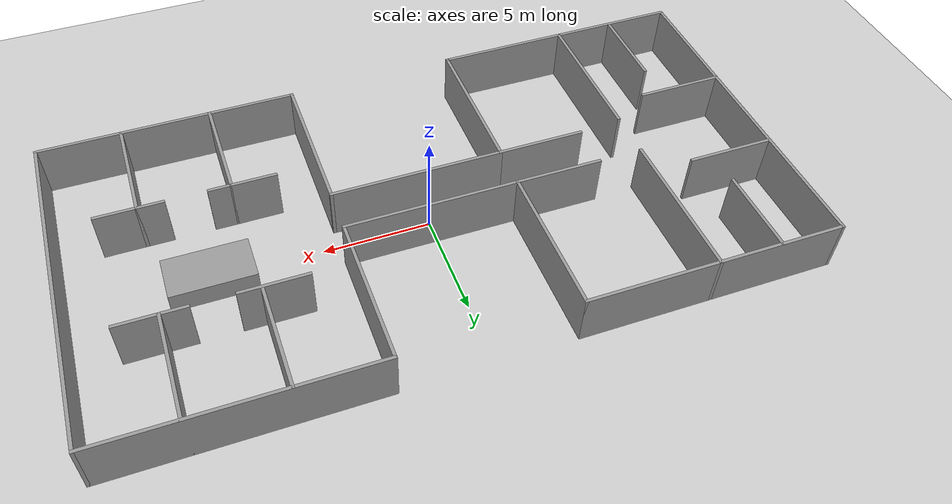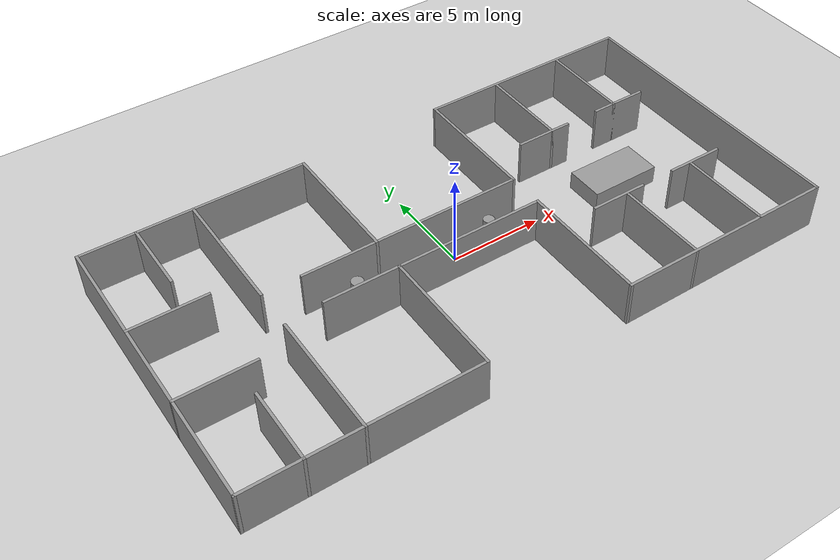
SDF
<sdf version="1.6">
 <world name="default">
  <light name="sun" type="directional">
   <pose>0 0 10 0 -0 0</pose>
   <diffuse>0.8 0.8 0.8 1</diffuse>
   <specular>0.1 0.1 0.1 1</specular>
   <attenuation>
    <range>1000</range>
    <constant>0.9</constant>
    <linear>0.01</linear>
    <quadratic>0.001</quadratic>
   </attenuation>
   <direction>-0.5 0.5 -1</direction>
  </light>
  <model name="ground_plane">
   <static>1</static>
   <link name="link">
    <collision name="collision">
     <geometry><plane><normal>0 0 1</normal><size>100 100</size></plane></geometry>
     <surface><friction><ode><mu>100</mu><mu2>50</mu2></ode></friction></surface>
    </collision>
    <visual name="visual">
     <cast_shadows>0</cast_shadows>
     <geometry><plane><normal>0 0 1</normal><size>100 100</size></plane></geometry>
     <material>
      <script><uri>file://media/materials/scripts/gazebo.material</uri><name>Gazebo/Grey</name></script>
     </material>
    </visual>
   </link>
  </model>
  <gravity>0 0 -9.8</gravity>
  <magnetic_field>6e-06 2.3e-05 -4.2e-05</magnetic_field>
  <atmosphere type="adiabatic"/>
  <physics name="default_physics" default="0" type="ode">
   <max_step_size>0.001</max_step_size>
   <real_time_factor>1</real_time_factor>
   <real_time_update_rate>1000</real_time_update_rate>
  </physics>
  <scene><ambient>0.4 0.4 0.4 1</ambient><background>0.7 0.7 0.7 1</background><shadows>1</shadows></scene>
  <spherical_coordinates>
   <surface_model>EARTH_WGS84</surface_model>
   <latitude_deg>0</latitude_deg>
   <longitude_deg>0</longitude_deg>
   <elevation>0</elevation>
   <heading_deg>0</heading_deg>
  </spherical_coordinates>
  <model name="corri">
   <pose>0.204649 -0.010537 0 0 -0 0</pose>
   <link name="Wall_0">
    <collision name="Wall_0_Collision">
     <geometry><box><size>12.15 0.15 2.5</size></box></geometry>
     <pose>0 0 1.25 0 -0 0</pose>
    </collision>
    <visual name="Wall_0_Visual">
     <pose>0 0 1.25 0 -0 0</pose>
     <geometry><box><size>12.15 0.15 2.5</size></box></geometry>
     <material>
      <script><uri>file://media/materials/scripts/gazebo.material</uri><name>Gazebo/Grey</name></script>
      <ambient>1 1 1 1</ambient>
     </material>
    </visual>
    <pose>-10.0001 7.99989 0 0 -0 0</pose>
   </link>
   <link name="Wall_10">
    <collision name="Wall_10_Collision">
     <geometry><box><size>7.15 0.15 2.5</size></box></geometry>
     <pose>0 0 1.25 0 -0 0</pose>
    </collision>
    <visual name="Wall_10_Visual">
     <pose>0 0 1.25 0 -0 0</pose>
     <geometry><box><size>7.15 0.15 2.5</size></box></geometry>
     <material>
      <script><uri>file://media/materials/scripts/gazebo.material</uri><name>Gazebo/Grey</name></script>
      <ambient>1 1 1 1</ambient>
     </material>
    </visual>
    <pose>-4.00008 -4.50011 0 0 0 -1.5708</pose>
   </link>
   <link name="Wall_11">
    <collision name="Wall_11_Collision">
     <geometry><box><size>12.15 0.15 2.5</size></box></geometry>
     <pose>0 0 1.25 0 -0 0</pose>
    </collision>
    <visual name="Wall_11_Visual">
     <pose>0 0 1.25 0 -0 0</pose>
     <geometry><box><size>12.15 0.15 2.5</size></box></geometry>
     <material>
      <script><uri>file://media/materials/scripts/gazebo.material</uri><name>Gazebo/Grey</name></script>
      <ambient>1 1 1 1</ambient>
     </material>
    </visual>
    <pose>-10.0001 -8.00011 0 0 -0 3.14159</pose>
   </link>
   <link name="Wall_12">
    <collision name="Wall_12_Collision">
     <geometry><box><size>16.15 0.15 2.5</size></box></geometry>
     <pose>0 0 1.25 0 -0 0</pose>
    </collision>
    <visual name="Wall_12_Visual">
     <pose>0 0 1.25 0 -0 0</pose>
     <geometry><box><size>16.15 0.15 2.5</size></box></geometry>
     <material>
      <script><uri>file://media/materials/scripts/gazebo.material</uri><name>Gazebo/Grey</name></script>
      <ambient>1 1 1 1</ambient>
     </material>
    </visual>
    <pose>-16.0001 -0.000108 0 0 -0 1.5708</pose>
   </link>
   <link name="Wall_14">
    <collision name="Wall_14_Collision">
     <geometry><box><size>7.14543 0.15 2.5</size></box></geometry>
     <pose>0 0 1.25 0 -0 0</pose>
    </collision>
    <visual name="Wall_14_Visual">
     <pose>0 0 1.25 0 -0 0</pose>
     <geometry><box><size>7.14543 0.15 2.5</size></box></geometry>
     <material>
      <script><uri>file://media/materials/scripts/gazebo.material</uri><name>Gazebo/Grey</name></script>
      <ambient>1 1 1 1</ambient>
     </material>
    </visual>
    <pose>-10.1011 4.50239 0 0 0 -1.5708</pose>
   </link>
   <link name="Wall_16">
    <collision name="Wall_16_Collision">
     <geometry><box><size>6.891 0.15 2.5</size></box></geometry>
     <pose>0 0 1.25 0 -0 0</pose>
    </collision>
    <visual name="Wall_16_Visual">
     <pose>0 0 1.25 0 -0 0</pose>
     <geometry><box><size>6.891 0.15 2.5</size></box></geometry>
     <material>
      <script><uri>file://media/materials/scripts/gazebo.material</uri><name>Gazebo/Grey</name></script>
      <ambient>1 1 1 1</ambient>
     </material>
    </visual>
    <pose>-10.1001 -4.62961 0 0 0 -1.5708</pose>
   </link>
   <link name="Wall_18">
    <collision name="Wall_18_Collision">
     <geometry><box><size>4.15 0.15 2.5</size></box></geometry>
     <pose>0 0 1.25 0 -0 0</pose>
    </collision>
    <visual name="Wall_18_Visual">
     <pose>0 0 1.25 0 -0 0</pose>
     <geometry><box><size>4.15 0.15 2.5</size></box></geometry>
     <material>
      <script><uri>file://media/materials/scripts/gazebo.material</uri><name>Gazebo/Grey</name></script>
      <ambient>1 1 1 1</ambient>
     </material>
    </visual>
    <pose>-14.0001 -2.38111 0 0 -0 0</pose>
   </link>
   <link name="Wall_2">
    <collision name="Wall_2_Collision">
     <geometry><box><size>7.15 0.15 2.5</size></box></geometry>
     <pose>0 0 1.25 0 -0 0</pose>
    </collision>
    <visual name="Wall_2_Visual">
     <pose>0 0 1.25 0 -0 0</pose>
     <geometry><box><size>7.15 0.15 2.5</size></box></geometry>
     <material>
      <script><uri>file://media/materials/scripts/gazebo.material</uri><name>Gazebo/Grey</name></script>
      <ambient>1 1 1 1</ambient>
     </material>
    </visual>
    <pose>-4.00008 4.49989 0 0 0 -1.5708</pose>
   </link>
   <link name="Wall_20">
    <collision name="Wall_20_Collision">
     <geometry><box><size>4.15 0.15 2.5</size></box></geometry>
     <pose>0 0 1.25 0 -0 0</pose>
    </collision>
    <visual name="Wall_20_Visual">
     <pose>0 0 1.25 0 -0 0</pose>
     <geometry><box><size>4.15 0.15 2.5</size></box></geometry>
     <material>
      <script><uri>file://media/materials/scripts/gazebo.material</uri><name>Gazebo/Grey</name></script>
      <ambient>1 1 1 1</ambient>
     </material>
    </visual>
    <pose>-14.0001 2.35289 0 0 -0 0</pose>
   </link>
   <link name="Wall_22">
    <collision name="Wall_22_Collision">
     <geometry><box><size>4.15 0.15 2.5</size></box></geometry>
     <pose>0 0 1.25 0 -0 0</pose>
    </collision>
    <visual name="Wall_22_Visual">
     <pose>0 0 1.25 0 -0 0</pose>
     <geometry><box><size>4.15 0.15 2.5</size></box></geometry>
     <material>
      <script><uri>file://media/materials/scripts/gazebo.material</uri><name>Gazebo/Grey</name></script>
      <ambient>1 1 1 1</ambient>
     </material>
    </visual>
    <pose>-6.00008 0.999892 0 0 -0 0</pose>
   </link>
   <link name="Wall_24">
    <collision name="Wall_24_Collision">
     <geometry><box><size>4.15 0.15 2.5</size></box></geometry>
     <pose>0 0 1.25 0 -0 0</pose>
    </collision>
    <visual name="Wall_24_Visual">
     <pose>0 0 1.25 0 -0 0</pose>
     <geometry><box><size>4.15 0.15 2.5</size></box></geometry>
     <material>
      <script><uri>file://media/materials/scripts/gazebo.material</uri><name>Gazebo/Grey</name></script>
      <ambient>1 1 1 1</ambient>
     </material>
    </visual>
    <pose>-6.00008 -1.00011 0 0 -0 0</pose>
   </link>
   <link name="Wall_26">
    <collision name="Wall_26_Collision">
     <geometry><box><size>5.15 0.15 2.5</size></box></geometry>
     <pose>0 0 1.25 0 -0 0</pose>
    </collision>
    <visual name="Wall_26_Visual">
     <pose>0 0 1.25 0 -0 0</pose>
     <geometry><box><size>5.15 0.15 2.5</size></box></geometry>
     <material>
      <script><uri>file://media/materials/scripts/gazebo.material</uri><name>Gazebo/Grey</name></script>
      <ambient>1 1 1 1</ambient>
     </material>
    </visual>
    <pose>12.1499 5.49989 0 0 0 -1.5708</pose>
   </link>
   <link name="Wall_28">
    <collision name="Wall_28_Collision">
     <geometry><box><size>5.15 0.15 2.5</size></box></geometry>
     <pose>0 0 1.25 0 -0 0</pose>
    </collision>
    <visual name="Wall_28_Visual">
     <pose>0 0 1.25 0 -0 0</pose>
     <geometry><box><size>5.15 0.15 2.5</size></box></geometry>
     <material>
      <script><uri>file://media/materials/scripts/gazebo.material</uri><name>Gazebo/Grey</name></script>
      <ambient>1 1 1 1</ambient>
     </material>
    </visual>
    <pose>7.99992 5.49989 0 0 0 -1.5708</pose>
   </link>
   <link name="Wall_3">
    <collision name="Wall_3_Collision">
     <geometry><box><size>8.15 0.15 2.5</size></box></geometry>
     <pose>0 0 1.25 0 -0 0</pose>
    </collision>
    <visual name="Wall_3_Visual">
     <pose>0 0 1.25 0 -0 0</pose>
     <geometry><box><size>8.15 0.15 2.5</size></box></geometry>
     <material>
      <script><uri>file://media/materials/scripts/gazebo.material</uri><name>Gazebo/Grey</name></script>
      <ambient>1 1 1 1</ambient>
     </material>
    </visual>
    <pose>-8.2e-05 0.999892 0 0 -0 0</pose>
   </link>
   <link name="Wall_30">
    <collision name="Wall_30_Collision">
     <geometry><box><size>3.15 0.15 2.5</size></box></geometry>
     <pose>0 0 1.25 0 -0 0</pose>
    </collision>
    <visual name="Wall_30_Visual">
     <pose>0 0 1.25 0 -0 0</pose>
     <geometry><box><size>3.15 0.15 2.5</size></box></geometry>
     <material>
      <script><uri>file://media/materials/scripts/gazebo.material</uri><name>Gazebo/Grey</name></script>
      <ambient>1 1 1 1</ambient>
     </material>
    </visual>
    <pose>7.49992 2.99989 0 0 -0 0</pose>
   </link>
   <link name="Wall_32">
    <collision name="Wall_32_Collision">
     <geometry><box><size>3.15 0.15 2.5</size></box></geometry>
     <pose>0 0 1.25 0 -0 0</pose>
    </collision>
    <visual name="Wall_32_Visual">
     <pose>0 0 1.25 0 -0 0</pose>
     <geometry><box><size>3.15 0.15 2.5</size></box></geometry>
     <material>
      <script><uri>file://media/materials/scripts/gazebo.material</uri><name>Gazebo/Grey</name></script>
      <ambient>1 1 1 1</ambient>
     </material>
    </visual>
    <pose>12.4999 2.99989 0 0 -0 0</pose>
   </link>
   <link name="Wall_34">
    <collision name="Wall_34_Collision">
     <geometry><box><size>5.15 0.15 2.5</size></box></geometry>
     <pose>0 0 1.25 0 -0 0</pose>
    </collision>
    <visual name="Wall_34_Visual">
     <pose>0 0 1.25 0 -0 0</pose>
     <geometry><box><size>5.15 0.15 2.5</size></box></geometry>
     <material>
      <script><uri>file://media/materials/scripts/gazebo.material</uri><name>Gazebo/Grey</name></script>
      <ambient>1 1 1 1</ambient>
     </material>
    </visual>
    <pose>7.99992 -5.50011 0 0 0 -1.5708</pose>
   </link>
   <link name="Wall_36">
    <collision name="Wall_36_Collision">
     <geometry><box><size>5.15 0.15 2.5</size></box></geometry>
     <pose>0 0 1.25 0 -0 0</pose>
    </collision>
    <visual name="Wall_36_Visual">
     <pose>0 0 1.25 0 -0 0</pose>
     <geometry><box><size>5.15 0.15 2.5</size></box></geometry>
     <material>
      <script><uri>file://media/materials/scripts/gazebo.material</uri><name>Gazebo/Grey</name></script>
      <ambient>1 1 1 1</ambient>
     </material>
    </visual>
    <pose>12.1499 -5.50011 0 0 0 -1.5708</pose>
   </link>
   <link name="Wall_38">
    <collision name="Wall_38_Collision">
     <geometry><box><size>3.15 0.15 2.5</size></box></geometry>
     <pose>0 0 1.25 0 -0 0</pose>
    </collision>
    <visual name="Wall_38_Visual">
     <pose>0 0 1.25 0 -0 0</pose>
     <geometry><box><size>3.15 0.15 2.5</size></box></geometry>
     <material>
      <script><uri>file://media/materials/scripts/gazebo.material</uri><name>Gazebo/Grey</name></script>
      <ambient>1 1 1 1</ambient>
     </material>
    </visual>
    <pose>7.49992 -3.00011 0 0 -0 0</pose>
   </link>
   <link name="Wall_4">
    <collision name="Wall_4_Collision">
     <geometry><box><size>7.15 0.15 2.5</size></box></geometry>
     <pose>0 0 1.25 0 -0 0</pose>
    </collision>
    <visual name="Wall_4_Visual">
     <pose>0 0 1.25 0 -0 0</pose>
     <geometry><box><size>7.15 0.15 2.5</size></box></geometry>
     <material>
      <script><uri>file://media/materials/scripts/gazebo.material</uri><name>Gazebo/Grey</name></script>
      <ambient>1 1 1 1</ambient>
     </material>
    </visual>
    <pose>3.99992 4.49989 0 0 -0 1.5708</pose>
   </link>
   <link name="Wall_40">
    <collision name="Wall_40_Collision">
     <geometry><box><size>3.15 0.15 2.5</size></box></geometry>
     <pose>0 0 1.25 0 -0 0</pose>
    </collision>
    <visual name="Wall_40_Visual">
     <pose>0 0 1.25 0 -0 0</pose>
     <geometry><box><size>3.15 0.15 2.5</size></box></geometry>
     <material>
      <script><uri>file://media/materials/scripts/gazebo.material</uri><name>Gazebo/Grey</name></script>
      <ambient>1 1 1 1</ambient>
     </material>
    </visual>
    <pose>12.4999 -3.00011 0 0 -0 0</pose>
   </link>
   <link name="Wall_42">
    <collision name="Wall_42_Collision">
     <geometry><box><size>4.151 0.15 2.5</size></box></geometry>
     <pose>0 0 1.25 0 -0 0</pose>
    </collision>
    <visual name="Wall_42_Visual">
     <pose>0 0 1.25 0 -0 0</pose>
     <geometry><box><size>4.151 0.15 2.5</size></box></geometry>
     <material>
      <script><uri>file://media/materials/scripts/gazebo.material</uri><name>Gazebo/Grey</name></script>
      <ambient>1 1 1 1</ambient>
     </material>
    </visual>
    <pose>-12.9331 -5.99961 0 0 0 -1.5708</pose>
   </link>
   <link name="Wall_44">
    <collision name="Wall_44_Collision">
     <geometry><box><size>4.06452 0.15 2.5</size></box></geometry>
     <pose>0 0 1.25 0 -0 0</pose>
    </collision>
    <visual name="Wall_44_Visual">
     <pose>0 0 1.25 0 -0 0</pose>
     <geometry><box><size>4.06452 0.15 2.5</size></box></geometry>
     <material>
      <script><uri>file://media/materials/scripts/gazebo.material</uri><name>Gazebo/Grey</name></script>
      <ambient>1 1 1 1</ambient>
     </material>
    </visual>
    <pose>-13.0541 6.04239 0 0 0 -1.5708</pose>
   </link>
   <link name="Wall_5">
    <collision name="Wall_5_Collision">
     <geometry><box><size>12.1503 0.15 2.5</size></box></geometry>
     <pose>0 0 1.25 0 -0 0</pose>
    </collision>
    <visual name="Wall_5_Visual">
     <pose>0 0 1.25 0 -0 0</pose>
     <geometry><box><size>12.1503 0.15 2.5</size></box></geometry>
     <material>
      <script><uri>file://media/materials/scripts/gazebo.material</uri><name>Gazebo/Grey</name></script>
      <ambient>1 1 1 1</ambient>
     </material>
    </visual>
    <pose>9.99992 7.99989 0 0 -0 0</pose>
   </link>
   <link name="Wall_6">
    <collision name="Wall_6_Collision">
     <geometry><box><size>16.15 0.15 2.5</size></box></geometry>
     <pose>0 0 1.25 0 -0 0</pose>
    </collision>
    <visual name="Wall_6_Visual">
     <pose>0 0 1.25 0 -0 0</pose>
     <geometry><box><size>16.15 0.15 2.5</size></box></geometry>
     <material>
      <script><uri>file://media/materials/scripts/gazebo.material</uri><name>Gazebo/Grey</name></script>
      <ambient>1 1 1 1</ambient>
     </material>
    </visual>
    <pose>15.9999 -0.000108 0 0 0 -1.5708</pose>
   </link>
   <link name="Wall_7">
    <collision name="Wall_7_Collision">
     <geometry><box><size>12.1503 0.15 2.5</size></box></geometry>
     <pose>0 0 1.25 0 -0 0</pose>
    </collision>
    <visual name="Wall_7_Visual">
     <pose>0 0 1.25 0 -0 0</pose>
     <geometry><box><size>12.1503 0.15 2.5</size></box></geometry>
     <material>
      <script><uri>file://media/materials/scripts/gazebo.material</uri><name>Gazebo/Grey</name></script>
      <ambient>1 1 1 1</ambient>
     </material>
    </visual>
    <pose>9.99992 -8.00011 0 0 -0 3.14159</pose>
   </link>
   <link name="Wall_8">
    <collision name="Wall_8_Collision">
     <geometry><box><size>7.15 0.15 2.5</size></box></geometry>
     <pose>0 0 1.25 0 -0 0</pose>
    </collision>
    <visual name="Wall_8_Visual">
     <pose>0 0 1.25 0 -0 0</pose>
     <geometry><box><size>7.15 0.15 2.5</size></box></geometry>
     <material>
      <script><uri>file://media/materials/scripts/gazebo.material</uri><name>Gazebo/Grey</name></script>
      <ambient>1 1 1 1</ambient>
     </material>
    </visual>
    <pose>3.99992 -4.50011 0 0 -0 1.5708</pose>
   </link>
   <link name="Wall_9">
    <collision name="Wall_9_Collision">
     <geometry><box><size>8.15 0.15 2.5</size></box></geometry>
     <pose>0 0 1.25 0 -0 0</pose>
    </collision>
    <visual name="Wall_9_Visual">
     <pose>0 0 1.25 0 -0 0</pose>
     <geometry><box><size>8.15 0.15 2.5</size></box></geometry>
     <material>
      <script><uri>file://media/materials/scripts/gazebo.material</uri><name>Gazebo/Grey</name></script>
      <ambient>1 1 1 1</ambient>
     </material>
    </visual>
    <pose>-8.2e-05 -1.00011 0 0 -0 3.14159</pose>
   </link>
   <static>1</static>
  </model>
  <model name="unit_cylinder_0">
   <pose>-5.19535 0.58721 0.5 0 -0 0</pose>
   <link name="link">
    <inertial>
     <mass>1</mass>
     <inertia><ixx>0.145833</ixx><ixy>0</ixy><ixz>0</ixz><iyy>0.145833</iyy><iyz>0</iyz><izz>0.125</izz></inertia>
    </inertial>
    <collision name="collision">
     <geometry><cylinder><radius>0.323225</radius><length>1</length></cylinder></geometry>
    </collision>
    <visual name="visual">
     <geometry><cylinder><radius>0.323225</radius><length>1</length></cylinder></geometry>
     <material>
      <script><name>Gazebo/Grey</name><uri>file://media/materials/scripts/gazebo.material</uri></script>
     </material>
    </visual>
   </link>
  </model>
  <model name="unit_cylinder_1">
   <pose>2.46888 0.604663 0.5 0 -0 0</pose>
   <link name="link">
    <inertial>
     <mass>1</mass>
     <inertia><ixx>0.145833</ixx><ixy>0</ixy><ixz>0</ixz><iyy>0.145833</iyy><iyz>0</iyz><izz>0.125</izz></inertia>
    </inertial>
    <collision name="collision">
     <geometry><cylinder><radius>0.301086</radius><length>1</length></cylinder></geometry>
    </collision>
    <visual name="visual">
     <geometry><cylinder><radius>0.301086</radius><length>1</length></cylinder></geometry>
     <material>
      <script><name>Gazebo/Grey</name><uri>file://media/materials/scripts/gazebo.material</uri></script>
     </material>
    </visual>
   </link>
  </model>
  <model name="unit_box_0">
   <pose>10.0313 0.019565 0.5 0 -0 0</pose>
   <link name="link">
    <inertial>
     <mass>1</mass>
     <inertia>
      <ixx>0.166667</ixx>
      <ixy>0</ixy>
      <ixz>0</ixz>
      <iyy>0.166667</iyy>
      <iyz>0</iyz>
      <izz>0.166667</izz>
     </inertia>
    </inertial>
    <collision name="collision"><geometry><box><size>3.87652 2.11994 1</size></box></geometry></collision>
    <visual name="visual">
     <geometry><box><size>3.87652 2.11994 1</size></box></geometry>
     <material>
      <script><name>Gazebo/Grey</name><uri>file://media/materials/scripts/gazebo.material</uri></script>
     </material>
    </visual>
   </link>
  </model>
  <model name="turtlebot3_burger">
   <pose>0.695788 0.086437 -0.001004 -1.2e-05 0.007741 0.192472</pose>
   <scale>1 1 1</scale>
   <link name="base_footprint">
    <pose>0.695788 0.086437 -0.001004 -1.2e-05 0.007741 0.192472</pose>
    <velocity>-0.00085 0.002383 1.8e-05 2.2e-05 -7.6e-05 0.037903</velocity>
    <acceleration>-0.000114 4.9e-05 0 2.9e-05 -0.000128 0.001362</acceleration>
    <wrench>-0.000108 4.6e-05 0 0 -0 0</wrench>
   </link>
   <link name="wheel_left_link">
    <pose>0.680735 0.165009 0.031997 -1.3486 -1.56749 -0.029732</pose>
    <velocity>-0.003831 0.001812 6e-06 0.000624 -5.1e-05 0.0379</velocity>
    <acceleration>-0.000206 -8e-05 0 2e-06 1.4e-05 0.002525</acceleration>
    <wrench>-6e-06 -2e-06 0 0 -0 0</wrench>
   </link>
   <link name="wheel_right_link">
    <pose>0.711341 0.007963 0.031999 -1.36055 1.56733 0.40271</pose>
    <velocity>0.002122 0.002972 5e-06 0.000522 0.000133 0.037904</velocity>
    <acceleration>-3.6e-05 0.000187 0 0 8e-06 0.002525</acceleration>
    <wrench>-1e-06 5e-06 0 0 -0 0</wrench>
   </link>
  </model>
 </world>
</sdf>
